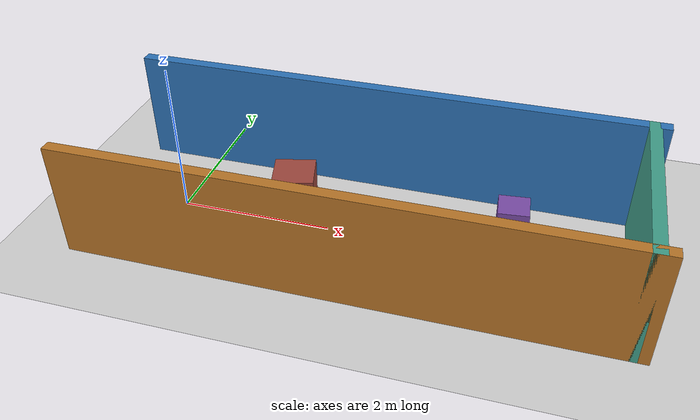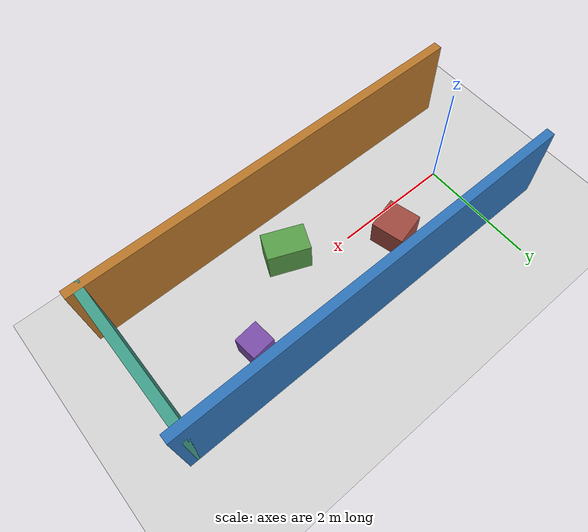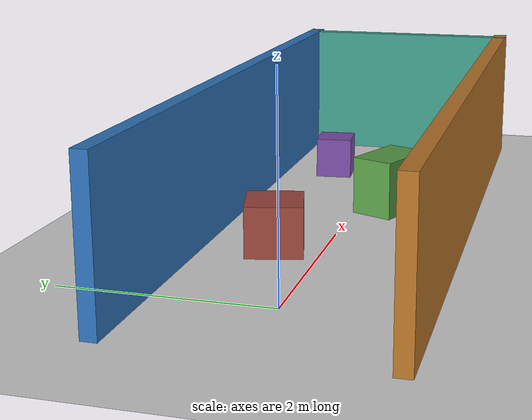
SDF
<?xml version="1.0" ?>
<sdf version="1.8">
  <world name="corridor_test">
    <physics type="ode">
      <max_step_size>0.001</max_step_size>
      <real_time_factor>1.0</real_time_factor>
    </physics>

    <plugin
      filename="libignition-gazebo-physics-system.so"
      name="ignition::gazebo::systems::Physics"/>
    <plugin
      filename="libignition-gazebo-user-commands-system.so"
      name="ignition::gazebo::systems::UserCommands"/>
    <plugin
      filename="libignition-gazebo-scene-broadcaster-system.so"
      name="ignition::gazebo::systems::SceneBroadcaster"/>

    <light name="sun" type="directional">
      <cast_shadows>true</cast_shadows>
      <pose>0 0 10 0 0 0</pose>
      <diffuse>0.8 0.8 0.8 1</diffuse>
      <specular>0.2 0.2 0.2 1</specular>
      <attenuation>
        <range>1000</range>
        <constant>0.9</constant>
        <linear>0.01</linear>
        <quadratic>0.001</quadratic>
      </attenuation>
      <direction>-0.4 0.2 -0.9</direction>
    </light>

    <model name="ground_plane">
      <static>true</static>
      <link name="link">
        <collision name="collision">
          <geometry>
            <plane>
              <normal>0 0 1</normal>
              <size>30 30</size>
            </plane>
          </geometry>
        </collision>
        <visual name="visual">
          <geometry>
            <plane>
              <normal>0 0 1</normal>
              <size>30 30</size>
            </plane>
          </geometry>
          <material>
            <ambient>0.82 0.82 0.82 1</ambient>
            <diffuse>0.82 0.82 0.82 1</diffuse>
          </material>
        </visual>
      </link>
    </model>

    <model name="left_corridor_wall">
      <static>true</static>
      <pose>2.5 1.2 0.75 0 0 0</pose>
      <link name="link">
        <collision name="collision">
          <geometry>
            <box>
              <size>7.0 0.15 1.5</size>
            </box>
          </geometry>
        </collision>
        <visual name="visual">
          <geometry>
            <box>
              <size>7.0 0.15 1.5</size>
            </box>
          </geometry>
          <material>
            <ambient>0.18 0.45 0.72 1</ambient>
            <diffuse>0.18 0.45 0.72 1</diffuse>
          </material>
        </visual>
      </link>
    </model>

    <model name="right_corridor_wall">
      <static>true</static>
      <pose>2.5 -1.2 0.75 0 0 0</pose>
      <link name="link">
        <collision name="collision">
          <geometry>
            <box>
              <size>7.0 0.15 1.5</size>
            </box>
          </geometry>
        </collision>
        <visual name="visual">
          <geometry>
            <box>
              <size>7.0 0.15 1.5</size>
            </box>
          </geometry>
          <material>
            <ambient>0.72 0.46 0.16 1</ambient>
            <diffuse>0.72 0.46 0.16 1</diffuse>
          </material>
        </visual>
      </link>
    </model>

    <model name="end_wall">
      <static>true</static>
      <pose>5.8 0 0.75 0 0 0</pose>
      <link name="link">
        <collision name="collision">
          <geometry>
            <box>
              <size>0.15 2.55 1.5</size>
            </box>
          </geometry>
        </collision>
        <visual name="visual">
          <geometry>
            <box>
              <size>0.15 2.55 1.5</size>
            </box>
          </geometry>
          <material>
            <ambient>0.25 0.62 0.54 1</ambient>
            <diffuse>0.25 0.62 0.54 1</diffuse>
          </material>
        </visual>
      </link>
    </model>

    <model name="crate_a">
      <static>true</static>
      <pose>1.4 0.45 0.25 0 0 0.25</pose>
      <link name="link">
        <collision name="collision">
          <geometry>
            <box>
              <size>0.55 0.55 0.5</size>
            </box>
          </geometry>
        </collision>
        <visual name="visual">
          <geometry>
            <box>
              <size>0.55 0.55 0.5</size>
            </box>
          </geometry>
          <material>
            <ambient>0.62 0.28 0.24 1</ambient>
            <diffuse>0.62 0.28 0.24 1</diffuse>
          </material>
        </visual>
      </link>
    </model>

    <model name="crate_b">
      <static>true</static>
      <pose>3.0 -0.35 0.3 0 0 -0.4</pose>
      <link name="link">
        <collision name="collision">
          <geometry>
            <box>
              <size>0.7 0.45 0.6</size>
            </box>
          </geometry>
        </collision>
        <visual name="visual">
          <geometry>
            <box>
              <size>0.7 0.45 0.6</size>
            </box>
          </geometry>
          <material>
            <ambient>0.34 0.62 0.28 1</ambient>
            <diffuse>0.34 0.62 0.28 1</diffuse>
          </material>
        </visual>
      </link>
    </model>

    <model name="crate_c">
      <static>true</static>
      <pose>4.3 0.55 0.225 0 0 0.1</pose>
      <link name="link">
        <collision name="collision">
          <geometry>
            <box>
              <size>0.4 0.4 0.45</size>
            </box>
          </geometry>
        </collision>
        <visual name="visual">
          <geometry>
            <box>
              <size>0.4 0.4 0.45</size>
            </box>
          </geometry>
          <material>
            <ambient>0.48 0.3 0.66 1</ambient>
            <diffuse>0.48 0.3 0.66 1</diffuse>
          </material>
        </visual>
      </link>
    </model>
  </world>
</sdf>
